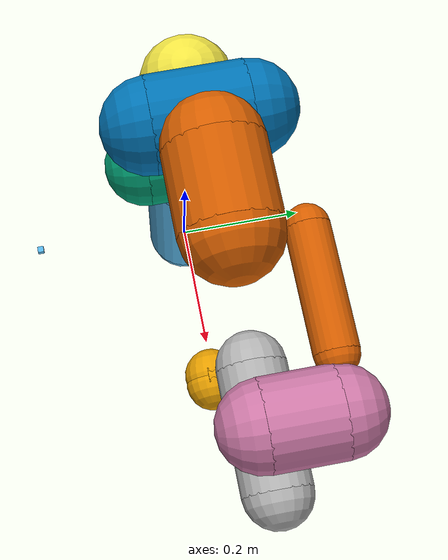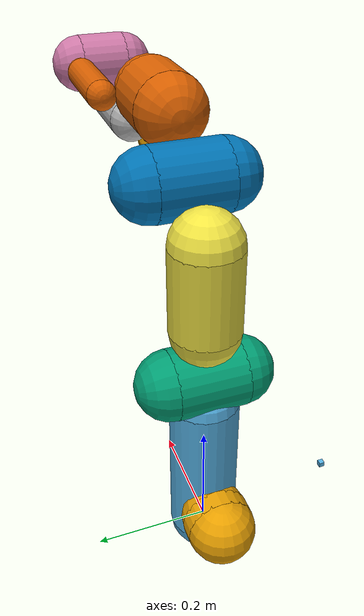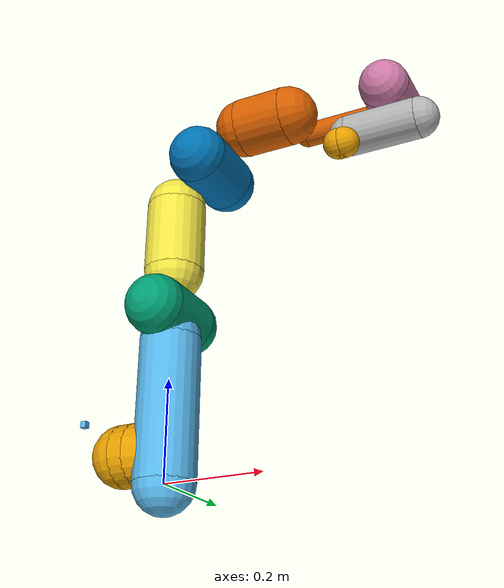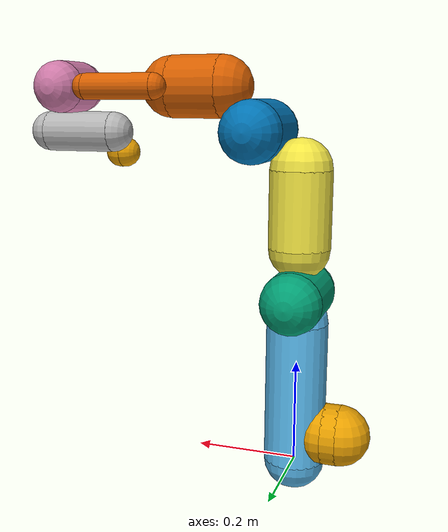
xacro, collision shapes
<?xml version="1.0"?>
<robot xmlns:xacro="http://www.ros.org/wiki/xacro" name="panda">
  <!-- Panda Arm + Hand -->
    <xacro:arg name="arm_id" default="panda" /> <!-- Name of this panda -->
  <xacro:arg name="hand"   default="true" /> <!-- Should a franka_gripper be mounted at the flange?" -->
  <xacro:arg name="gazebo" default="true" /> <!-- Is the robot being simulated in gazebo?" -->
  <xacro:arg name="transmission" default="hardware_interface/EffortJointInterface" /> <!-- The transmission that is used in the gazebo joints -->
  <xacro:include filename="/home/suchenyu/ws_grasp/src/franka_ros/franka_description/robots/panda_arm.urdf.xacro"/>

  <xacro:include filename="$(find deep_grasp_task)/urdf/camera/camera_macro.urdf.xacro"/>
  <!-- camera side view for the cylinder -->
  <xacro:kinect_camera parent_link="panda_link0" cam_py="-0.25" cam_pz="0.04"/>
  <!-- overhead position -->

  <!-- Crank up the friction -->
  <gazebo reference="panda_leftfinger">
    <mu1>100.0</mu1>
    <mu2>100.0</mu2>
  </gazebo>

  <gazebo reference="panda_rightfinger">
    <mu1>100.0</mu1>
    <mu2>100.0</mu2>
  </gazebo>
</robot>

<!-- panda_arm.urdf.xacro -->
<robot xmlns:xacro="http://www.ros.org/wiki/xacro" name="panda">
  <xacro:include filename="$(find franka_description)/robots/panda_arm.xacro" />
  <xacro:panda_arm safety_distance="0.00"/>
</robot>

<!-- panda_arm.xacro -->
<robot xmlns:xacro="http://www.ros.org/wiki/xacro" name="panda">
  <!-- safety_distance: Minimum safety distance in [m] by which the collision volumes are expanded and which is enforced during robot motions -->
  <!-- arm_id: Namespace of the panda arm. Serves to differentiate between arms in case of multiple instances. -->
  <xacro:macro name="panda_arm" params="arm_id:='panda' description_pkg:='franka_description' connected_to:='' xyz:='0 0 0' rpy:='0 0 0' safety_distance:=0">
    <xacro:unless value="${not connected_to}">
      <joint name="${arm_id}_joint_${connected_to}" type="fixed">
        <parent link="${connected_to}"/>
        <child link="${arm_id}_link0"/>
        <origin rpy="${rpy}" xyz="${xyz}"/>
      </joint>
    </xacro:unless>
    <link name="${arm_id}_link0">
      <visual>
        <geometry>
          <mesh filename="package://${description_pkg}/meshes/visual/link0.dae"/>
        </geometry>
      </visual>
      <collision>
        <origin xyz="-0.075 0 0.06" rpy="0 ${pi/2} 0"/>
        <geometry>
          <cylinder radius="${0.06+safety_distance}" length="0.03" />
        </geometry>
      </collision>
      <collision>
        <origin xyz="-0.06 0 0.06" rpy="0 0 0"/>
        <geometry>
          <sphere radius="${0.06+safety_distance}" />
        </geometry>
      </collision>
      <collision>
        <origin xyz="-0.09 0 0.06" rpy="0 0 0"/>
        <geometry>
          <sphere radius="${0.06+safety_distance}" />
        </geometry>
      </collision>
    </link>
    <link name="${arm_id}_link1">
      <visual>
        <geometry>
          <mesh filename="package://${description_pkg}/meshes/visual/link1.dae"/>
        </geometry>
      </visual>
      <collision>
        <origin xyz="0 0 -0.1915" rpy="0 0 0"/>
        <geometry>
          <cylinder radius="${0.06+safety_distance}" length="0.2830" />
        </geometry>
      </collision>
      <collision>
        <origin xyz="0 0 -0.333" rpy="0 0 0"/>
        <geometry>
          <sphere radius="${0.06+safety_distance}" />
        </geometry>
      </collision>
      <collision>
        <origin xyz="0 0 -0.05" rpy="0 0 0"/>
        <geometry>
          <sphere radius="${0.06+safety_distance}" />
        </geometry>
      </collision>
    </link>
    <joint name="${arm_id}_joint1" type="revolute">
      <safety_controller k_position="100.0" k_velocity="40.0" soft_lower_limit="-2.8973" soft_upper_limit="2.8973"/>
      <origin rpy="0 0 0" xyz="0 0 0.333"/>
      <parent link="${arm_id}_link0"/>
      <child link="${arm_id}_link1"/>
      <axis xyz="0 0 1"/>
      <limit effort="87" lower="-2.8973" upper="2.8973" velocity="2.1750"/>
    </joint>
    <link name="${arm_id}_link2">
      <visual>
        <geometry>
          <mesh filename="package://${description_pkg}/meshes/visual/link2.dae"/>
        </geometry>
      </visual>
      <collision>
        <origin xyz="0 0 0" rpy="0 0 0"/>
        <geometry>
          <cylinder radius="${0.06+safety_distance}" length="0.12" />
        </geometry>
      </collision>
      <collision>
        <origin xyz="0 0 -0.06" rpy="0 0 0"/>
        <geometry>
          <sphere radius="${0.06+safety_distance}" />
        </geometry>
      </collision>
      <collision>
        <origin xyz="0 0 0.06" rpy="0 0 0"/>
        <geometry>
          <sphere radius="${0.06+safety_distance}" />
        </geometry>
      </collision>
    </link>
    <joint name="${arm_id}_joint2" type="revolute">
      <safety_controller k_position="100.0" k_velocity="40.0" soft_lower_limit="-1.7628" soft_upper_limit="1.7628"/>
      <origin rpy="${-pi/2} 0 0" xyz="0 0 0"/>
      <parent link="${arm_id}_link1"/>
      <child link="${arm_id}_link2"/>
      <axis xyz="0 0 1"/>
      <limit effort="87" lower="-1.7628" upper="1.7628" velocity="2.1750"/>
    </joint>
    <link name="${arm_id}_link3">
      <visual>
        <geometry>
          <mesh filename="package://${description_pkg}/meshes/visual/link3.dae"/>
        </geometry>
      </visual>
      <collision>
        <origin xyz="0 0 -0.145" rpy="0 0 0"/>
        <geometry>
          <cylinder radius="${0.06+safety_distance}" length="0.15" />
        </geometry>
      </collision>
      <collision>
        <origin xyz="0 0 -0.22" rpy="0 0 0"/>
        <geometry>
          <sphere radius="${0.06+safety_distance}" />
        </geometry>
      </collision>
      <collision>
        <origin xyz="0 0 -0.07" rpy="0 0 0"/>
        <geometry>
          <sphere radius="${0.06+safety_distance}" />
        </geometry>
      </collision>
    </link>
    <joint name="${arm_id}_joint3" type="revolute">
      <safety_controller k_position="100.0" k_velocity="40.0" soft_lower_limit="-2.8973" soft_upper_limit="2.8973"/>
      <origin rpy="${pi/2} 0 0" xyz="0 -0.316 0"/>
      <parent link="${arm_id}_link2"/>
      <child link="${arm_id}_link3"/>
      <axis xyz="0 0 1"/>
      <limit effort="87" lower="-2.8973" upper="2.8973" velocity="2.1750"/>
    </joint>
    <link name="${arm_id}_link4">
      <visual>
        <geometry>
          <mesh filename="package://${description_pkg}/meshes/visual/link4.dae"/>
        </geometry>
      </visual>
      <collision>
        <origin xyz="0 0 0" rpy="0 0 0"/>
        <geometry>
          <cylinder radius="${0.06+safety_distance}" length="0.12" />
        </geometry>
      </collision>
      <collision>
        <origin xyz="0 0 0.06" rpy="0 0 0"/>
        <geometry>
          <sphere radius="${0.06+safety_distance}" />
        </geometry>
      </collision>
      <collision>
        <origin xyz="0 0 -0.06" rpy="0 0 0"/>
        <geometry>
          <sphere radius="${0.06+safety_distance}" />
        </geometry>
      </collision>
    </link>
    <joint name="${arm_id}_joint4" type="revolute">
      <safety_controller k_position="100.0" k_velocity="40.0" soft_lower_limit="-3.0718" soft_upper_limit="-0.0698"/>
      <origin rpy="${pi/2} 0 0" xyz="0.0825 0 0"/>
      <parent link="${arm_id}_link3"/>
      <child link="${arm_id}_link4"/>
      <axis xyz="0 0 1"/>
      <limit effort="87" lower="-3.0718" upper="-0.0698" velocity="2.1750"/>
    </joint>
    <link name="${arm_id}_link5">
      <visual>
        <geometry>
          <mesh filename="package://${description_pkg}/meshes/visual/link5.dae"/>
        </geometry>
      </visual>
      <collision>
        <origin xyz="0 0 -0.26" rpy="0 0 0"/>
        <geometry>
          <cylinder radius="${0.06+safety_distance}" length="0.1" />
        </geometry>
      </collision>
      <collision>
        <origin xyz="0 0 -0.31" rpy="0 0 0"/>
        <geometry>
          <sphere radius="${0.06+safety_distance}" />
        </geometry>
      </collision>
      <collision>
        <origin xyz="0 0 -0.21" rpy="0 0 0"/>
        <geometry>
          <sphere radius="${0.06+safety_distance}" />
        </geometry>
      </collision>
      <collision>
        <origin xyz="0 0.08 -0.13" rpy="0 0 0"/>
        <geometry>
          <cylinder radius="${0.025+safety_distance}" length="0.14" />
        </geometry>
      </collision>
      <collision>
        <origin xyz="0 0.08 -0.06" rpy="0 0 0"/>
        <geometry>
          <sphere radius="${0.025+safety_distance}" />
        </geometry>
      </collision>
      <collision>
        <origin xyz="0 0.08 -0.20" rpy="0 0 0"/>
        <geometry>
          <sphere radius="${0.025+safety_distance}" />
        </geometry>
      </collision>

    </link>
    <joint name="${arm_id}_joint5" type="revolute">
      <safety_controller k_position="100.0" k_velocity="40.0" soft_lower_limit="-2.8973" soft_upper_limit="2.8973"/>
      <origin rpy="${-pi/2} 0 0" xyz="-0.0825 0.384 0"/>
      <parent link="${arm_id}_link4"/>
      <child link="${arm_id}_link5"/>
      <axis xyz="0 0 1"/>
      <limit effort="12" lower="-2.8973" upper="2.8973" velocity="2.6100"/>
    </joint>
    <link name="${arm_id}_link6">
      <visual>
        <geometry>
          <mesh filename="package://${description_pkg}/meshes/visual/link6.dae"/>
        </geometry>
      </visual>
      <collision>
        <origin xyz="0 0 -0.03" rpy="0 0 0"/>
        <geometry>
          <cylinder radius="${0.05+safety_distance}" length="0.08" />
        </geometry>
      </collision>
      <collision>
        <origin xyz="0 0 0.01" rpy="0 0 0"/>
        <geometry>
          <sphere radius="${0.05+safety_distance}" />
        </geometry>
      </collision>
      <collision>
        <origin xyz="0 0 -0.07" rpy="0 0 0"/>
        <geometry>
          <sphere radius="${0.05+safety_distance}" />
        </geometry>
      </collision>
    </link>
    <joint name="${arm_id}_joint6" type="revolute">
      <safety_controller k_position="100.0" k_velocity="40.0" soft_lower_limit="-0.0175" soft_upper_limit="3.7525"/>
      <origin rpy="${pi/2} 0 0" xyz="0 0 0"/>
      <parent link="${arm_id}_link5"/>
      <child link="${arm_id}_link6"/>
      <axis xyz="0 0 1"/>
      <limit effort="12" lower="-0.0175" upper="3.7525" velocity="2.6100"/>
    </joint>
    <link name="${arm_id}_link7">
      <visual>
        <geometry>
          <mesh filename="package://${description_pkg}/meshes/visual/link7.dae"/>
        </geometry>
      </visual>
      <collision>
        <origin xyz="0 0 0.01" rpy="0 0 0"/>
        <geometry>
          <cylinder radius="${0.04+safety_distance}" length="0.14" />
        </geometry>
      </collision>
      <collision>
        <origin xyz="0 0 0.08" rpy="0 0 0"/>
        <geometry>
          <sphere radius="${0.04+safety_distance}"  />
        </geometry>
      </collision>
      <collision>
        <origin xyz="0 0 -0.06" rpy="0 0 0"/>
        <geometry>
          <sphere radius="${0.04+safety_distance}"  />
        </geometry>
      </collision>
    </link>
    <joint name="${arm_id}_joint7" type="revolute">
      <safety_controller k_position="100.0" k_velocity="40.0" soft_lower_limit="-2.8973" soft_upper_limit="2.8973"/>
      <origin rpy="${pi/2} 0 0" xyz="0.088 0 0"/>
      <parent link="${arm_id}_link6"/>
      <child link="${arm_id}_link7"/>
      <axis xyz="0 0 1"/>
      <limit effort="12" lower="-2.8973" upper="2.8973" velocity="2.6100"/>
    </joint>
    <link name="${arm_id}_link8">
      <collision>
        <origin xyz="0.0424 0.0424 -0.0250" rpy="${pi} ${pi/2} ${pi/2}"/>
        <geometry>
          <cylinder radius="${0.03+safety_distance}"  length="0.01" />
        </geometry>
      </collision>
      <collision>
        <origin xyz="0.0424 0.0424 -0.02" rpy="0 0 0"/>
        <geometry>
          <sphere radius="${0.03+safety_distance}"  />
        </geometry>
      </collision>
      <collision>
        <origin xyz="0.0424 0.0424 -0.03" rpy="0 0 0"/>
        <geometry>
          <sphere radius="${0.03+safety_distance}"  />
        </geometry>
      </collision>
    </link>
    <joint name="${arm_id}_joint8" type="fixed">
      <origin rpy="0 0 0" xyz="0 0 0.107"/>
      <parent link="${arm_id}_link7"/>
      <child link="${arm_id}_link8"/>
    </joint>
  </xacro:macro>
</robot>

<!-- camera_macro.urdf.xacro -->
<robot name="camera_macro" xmlns:xacro="http://ros.org/wiki/xacro">
  <xacro:macro name="kinect_camera" params="parent_link cam_px:=0.0 cam_py:=0.0 cam_pz:=0.0 cam_or:=0.0 cam_op:=0.0 cam_oy:=0.0">

    <xacro:property name="M_PI" value="3.1415926535897931"/>

    <link name="camera_link">
      <visual>
        <origin xyz="0 0 0" rpy="0 0 ${M_PI/2}"/>
        <geometry>
          <mesh filename="package://kmriiwa_description/meshes_test/camera/kinect.dae"/>

        </geometry>
      </visual>
      <collision>
        <origin xyz="0 0 0" rpy="0 0 ${M_PI/2}"/>
        <geometry>
          <box size="0.01 0.01 0.01" />
        </geometry>
      </collision>
      <inertial>
        <mass value="0.564" />
        <origin xyz="0 0 0" />
        <inertia ixx="0.003881243" ixy="0.0" ixz="0.0"
        iyy="0.000498940" iyz="0.0"
        izz="0.003879257" />
        </inertial>
    </link>

    <joint name="camera_joint" type="fixed">
      <origin xyz="${cam_px} ${cam_py} ${cam_pz}" rpy="${cam_or} ${cam_op} ${cam_oy}"/>
      <parent link="${parent_link}"/>
      <child link="camera_link" />
    </joint>

    <link name="camera_optical_link"/>

    <joint name="camera_optical_joint" type="fixed">
      <origin xyz="0 0 0" rpy="${-M_PI/2} 0 ${-M_PI/2}"/>
      <parent link="camera_link"/>
      <child link="camera_optical_link"/>
    </joint>

    <gazebo reference="camera_link">
      <sensor name="camera" type="depth">
        <always_on>true</always_on>
        <update_rate>20</update_rate>
        <camera>
          <horizontal_fov>1.047198</horizontal_fov>
          <image>
            <width>640</width>
            <height>480</height>
            <format>R8G8B8</format>
          </image>
          <clip>
            <near>0.05</near>
            <far>8.0</far>
          </clip>
        </camera>
        <plugin name="kinect_camera_controller" filename="libgazebo_ros_openni_kinect.so">
          <cameraName>camera</cameraName>
          <alwaysOn>true</alwaysOn>
          <updateRate>10</updateRate>
          <imageTopicName>color/image_raw</imageTopicName>
          <depthImageTopicName>depth/image_rect_raw</depthImageTopicName>
          <pointCloudTopicName>depth/color/points</pointCloudTopicName>
          <cameraInfoTopicName>rgb/camera_info</cameraInfoTopicName>
          <depthImageInfoTopicName>depth/camera_info</depthImageInfoTopicName>
          <frameName>camera_optical_link</frameName>
          <baseline>0.1</baseline>
          <distortion_k1>0.0</distortion_k1>
          <distortion_k2>0.0</distortion_k2>
          <distortion_k3>0.0</distortion_k3>
          <distortion_t1>0.0</distortion_t1>
          <distortion_t2>0.0</distortion_t2>
          <pointCloudCutoff>0.4</pointCloudCutoff>
        </plugin>
      </sensor>
    </gazebo>
  </xacro:macro>
</robot>
